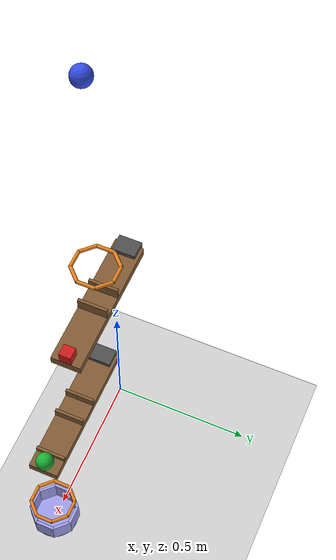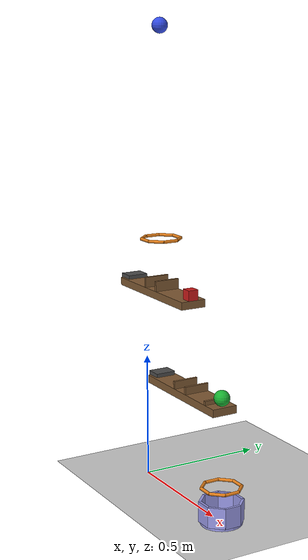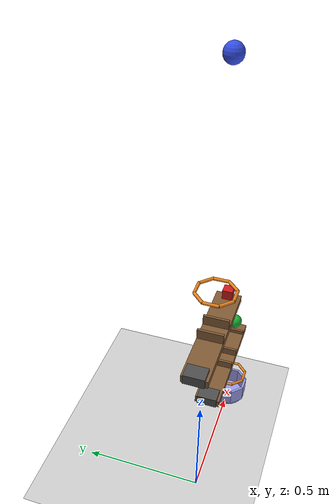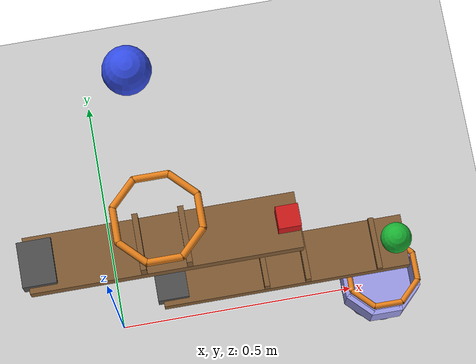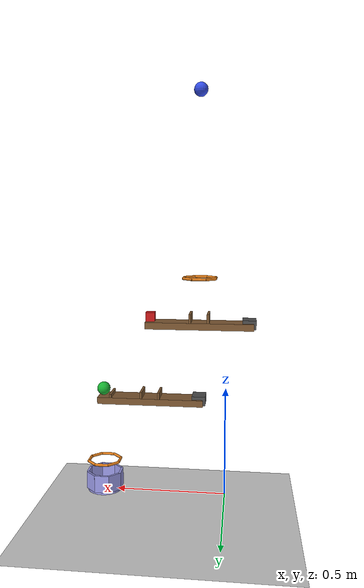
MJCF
<mujoco model="trapdoor_chain">
  <option timestep="0.002"/>
  <worldbody>
    <light name="sun" pos="0.3 -1 3" dir="0 0.3 -1" directional="true"/>
    <geom name="floor" type="plane" size="3 3 0.1" rgba="0.8 0.8 0.8 1"/>

    <body name="hoop1" pos="0.12 0 1.0">
      <geom name="hoop1_s0" type="capsule" size="0.006" fromto="0.0702 0.0291 0 0.0291 0.0702 0" rgba="0.9 0.5 0.1 1"/>
      <geom name="hoop1_s1" type="capsule" size="0.006" fromto="0.0291 0.0702 0 -0.0291 0.0702 0" rgba="0.9 0.5 0.1 1"/>
      <geom name="hoop1_s2" type="capsule" size="0.006" fromto="-0.0291 0.0702 0 -0.0702 0.0291 0" rgba="0.9 0.5 0.1 1"/>
      <geom name="hoop1_s3" type="capsule" size="0.006" fromto="-0.0702 0.0291 0 -0.0702 -0.0291 0" rgba="0.9 0.5 0.1 1"/>
      <geom name="hoop1_s4" type="capsule" size="0.006" fromto="-0.0702 -0.0291 0 -0.0291 -0.0702 0" rgba="0.9 0.5 0.1 1"/>
      <geom name="hoop1_s5" type="capsule" size="0.006" fromto="-0.0291 -0.0702 0 0.0291 -0.0702 0" rgba="0.9 0.5 0.1 1"/>
      <geom name="hoop1_s6" type="capsule" size="0.006" fromto="0.0291 -0.0702 0 0.0702 -0.0291 0" rgba="0.9 0.5 0.1 1"/>
      <geom name="hoop1_s7" type="capsule" size="0.006" fromto="0.0702 -0.0291 0 0.0702 0.0291 0" rgba="0.9 0.5 0.1 1"/>
    </body>

    <body name="ball1" pos="0.12 0 1.8">
      <freejoint name="ball1_free"/>
      <geom name="ball1_geom" type="sphere" size="0.03" mass="0.3" solref="0.005 1" rgba="0.2 0.3 0.9 1"/>
    </body>

    <body name="flap1" pos="0 0 0.8">
      <joint name="flap1_hinge" type="hinge" axis="0 1 0" limited="true" range="0 35" solreflimit="0.005 1"/>
      <geom name="flap1_plate" type="box" size="0.24 0.05 0.015" pos="0.12 0 -0.01" mass="0.1" solref="0.005 1" rgba="0.5 0.35 0.2 1"/>
      <geom name="flap1_counter" type="box" size="0.03 0.04 0.02" pos="-0.1 0 0" mass="1.3" rgba="0.3 0.3 0.3 1"/>
      <geom name="flap1_lip_in" type="box" size="0.005 0.05 0.02" pos="0.08 0 0.025" mass="0.01" solref="0.005 1" rgba="0.5 0.35 0.2 1"/>
      <geom name="flap1_lip_out" type="box" size="0.005 0.05 0.02" pos="0.16 0 0.025" mass="0.01" solref="0.005 1" rgba="0.5 0.35 0.2 1"/>
    </body>

    <body name="block" pos="0.34 0 0.825">
      <freejoint name="block_free"/>
      <geom name="block_geom" type="box" size="0.02 0.02 0.02" mass="0.3" solref="0.005 1" rgba="0.8 0.1 0.1 1"/>
    </body>

    <body name="flap2" pos="0.22 0 0.45">
      <joint name="flap2_hinge" type="hinge" axis="0 1 0" limited="true" range="0 35" solreflimit="0.005 1"/>
      <geom name="flap2_plate" type="box" size="0.24 0.05 0.015" pos="0.12 0 -0.01" mass="0.1" solref="0.005 1" rgba="0.5 0.35 0.2 1"/>
      <geom name="flap2_counter" type="box" size="0.03 0.04 0.02" pos="-0.1 0 0" mass="0.7" rgba="0.3 0.3 0.3 1"/>
      <geom name="flap2_lip_in" type="box" size="0.005 0.05 0.015" pos="0.08 0 0.02" mass="0.01" solref="0.005 1" rgba="0.5 0.35 0.2 1"/>
      <geom name="flap2_lip_out" type="box" size="0.005 0.05 0.015" pos="0.16 0 0.02" mass="0.01" solref="0.005 1" rgba="0.5 0.35 0.2 1"/>
      <geom name="flap2_lip_ball" type="box" size="0.005 0.05 0.008" pos="0.30 0 0.013" mass="0.01" rgba="0.5 0.35 0.2 1"/>
    </body>

    <body name="ball2" pos="0.56 0 0.485">
      <freejoint name="ball2_free"/>
      <geom name="ball2_geom" type="sphere" size="0.03" mass="0.1" condim="6" friction="1 0.005 0.001" solref="0.005 1" rgba="0.1 0.7 0.2 1"/>
    </body>

    <body name="hoop2" pos="0.56 0 0.14">
      <geom name="hoop2_s0" type="capsule" size="0.006" fromto="0.0702 0.0291 0 0.0291 0.0702 0" rgba="0.9 0.5 0.1 1"/>
      <geom name="hoop2_s1" type="capsule" size="0.006" fromto="0.0291 0.0702 0 -0.0291 0.0702 0" rgba="0.9 0.5 0.1 1"/>
      <geom name="hoop2_s2" type="capsule" size="0.006" fromto="-0.0291 0.0702 0 -0.0702 0.0291 0" rgba="0.9 0.5 0.1 1"/>
      <geom name="hoop2_s3" type="capsule" size="0.006" fromto="-0.0702 0.0291 0 -0.0702 -0.0291 0" rgba="0.9 0.5 0.1 1"/>
      <geom name="hoop2_s4" type="capsule" size="0.006" fromto="-0.0702 -0.0291 0 -0.0291 -0.0702 0" rgba="0.9 0.5 0.1 1"/>
      <geom name="hoop2_s5" type="capsule" size="0.006" fromto="-0.0291 -0.0702 0 0.0291 -0.0702 0" rgba="0.9 0.5 0.1 1"/>
      <geom name="hoop2_s6" type="capsule" size="0.006" fromto="0.0291 -0.0702 0 0.0702 -0.0291 0" rgba="0.9 0.5 0.1 1"/>
      <geom name="hoop2_s7" type="capsule" size="0.006" fromto="0.0702 -0.0291 0 0.0702 0.0291 0" rgba="0.9 0.5 0.1 1"/>
    </body>

    <body name="cup" pos="0.56 0 0">
      <geom name="cup_base" type="cylinder" size="0.08 0.005" pos="0 0 0.005" solref="0.005 1" rgba="0.6 0.6 0.9 1"/>
      <geom name="cup_w0" type="box" size="0.005 0.033 0.04" pos="0.075 0 0.05" euler="0 0 0" rgba="0.6 0.6 0.9 1"/>
      <geom name="cup_w1" type="box" size="0.005 0.033 0.04" pos="0.053 0.053 0.05" euler="0 0 45" rgba="0.6 0.6 0.9 1"/>
      <geom name="cup_w2" type="box" size="0.005 0.033 0.04" pos="0 0.075 0.05" euler="0 0 90" rgba="0.6 0.6 0.9 1"/>
      <geom name="cup_w3" type="box" size="0.005 0.033 0.04" pos="-0.053 0.053 0.05" euler="0 0 135" rgba="0.6 0.6 0.9 1"/>
      <geom name="cup_w4" type="box" size="0.005 0.033 0.04" pos="-0.075 0 0.05" euler="0 0 180" rgba="0.6 0.6 0.9 1"/>
      <geom name="cup_w5" type="box" size="0.005 0.033 0.04" pos="-0.053 -0.053 0.05" euler="0 0 225" rgba="0.6 0.6 0.9 1"/>
      <geom name="cup_w6" type="box" size="0.005 0.033 0.04" pos="0 -0.075 0.05" euler="0 0 270" rgba="0.6 0.6 0.9 1"/>
      <geom name="cup_w7" type="box" size="0.005 0.033 0.04" pos="0.053 -0.053 0.05" euler="0 0 315" rgba="0.6 0.6 0.9 1"/>
    </body>
  </worldbody>
</mujoco>
